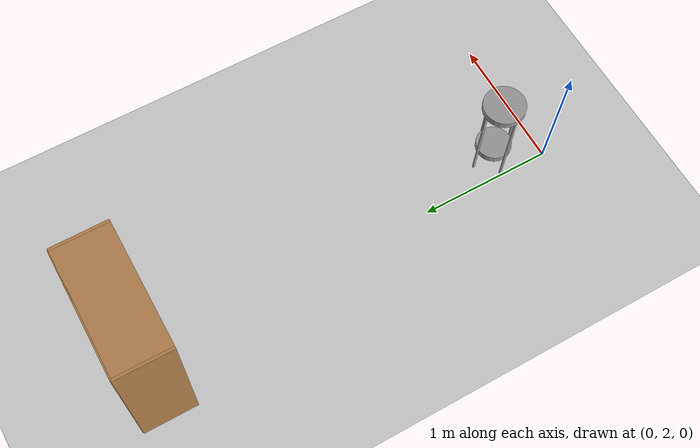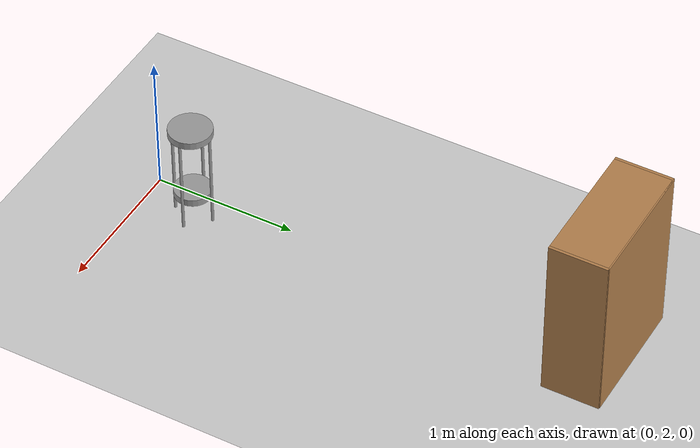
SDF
<sdf version="1.6">
 <world name="default">
  <model name="ground_plane">
   <static>1</static>
   <link name="link">
    <collision name="collision">
     <geometry><plane><normal>0 0 1</normal><size>100 100</size></plane></geometry>
     <surface><friction><ode><mu>100</mu><mu2>50</mu2></ode></friction></surface>
    </collision>
    <visual name="visual">
     <cast_shadows>0</cast_shadows>
     <geometry><plane><normal>0 0 1</normal><size>100 100</size></plane></geometry>
     <material>
      <script><uri>file://media/materials/scripts/gazebo.material</uri><name>Gazebo/Grey</name></script>
     </material>
    </visual>
   </link>
  </model>
  <model name="bookshelf">
   <static>1</static>
   <link name="link">
    <inertial><mass>1</mass></inertial>
    <collision name="back">
     <pose>0 0.005 0.6 0 -0 0</pose>
     <geometry><box><size>0.9 0.01 1.2</size></box></geometry>
    </collision>
    <visual name="visual1">
     <pose>0 0.005 0.6 0 -0 0</pose>
     <geometry><box><size>0.9 0.01 1.2</size></box></geometry>
     <material>
      <script><uri>file://media/materials/scripts/gazebo.material</uri><name>Gazebo/Wood</name></script>
     </material>
    </visual>
    <collision name="left_side">
     <pose>0.45 -0.195 0.6 0 -0 0</pose>
     <geometry><box><size>0.02 0.4 1.2</size></box></geometry>
    </collision>
    <visual name="visual2">
     <pose>0.45 -0.195 0.6 0 -0 0</pose>
     <geometry><box><size>0.02 0.4 1.2</size></box></geometry>
     <material>
      <script><uri>file://media/materials/scripts/gazebo.material</uri><name>Gazebo/Wood</name></script>
     </material>
    </visual>
    <collision name="right_side">
     <pose>-0.45 -0.195 0.6 0 -0 0</pose>
     <geometry><box><size>0.02 0.4 1.2</size></box></geometry>
    </collision>
    <visual name="visual3">
     <pose>-0.45 -0.195 0.6 0 -0 0</pose>
     <geometry><box><size>0.02 0.4 1.2</size></box></geometry>
     <material>
      <script><uri>file://media/materials/scripts/gazebo.material</uri><name>Gazebo/Wood</name></script>
     </material>
    </visual>
    <collision name="bottom">
     <pose>0 -0.195 0.03 0 -0 0</pose>
     <geometry><box><size>0.88 0.4 0.06</size></box></geometry>
    </collision>
    <visual name="visual4">
     <pose>0 -0.195 0.03 0 -0 0</pose>
     <geometry><box><size>0.88 0.4 0.06</size></box></geometry>
     <material>
      <script><uri>file://media/materials/scripts/gazebo.material</uri><name>Gazebo/Wood</name></script>
     </material>
    </visual>
    <collision name="top">
     <pose>0 -0.195 1.19 0 -0 0</pose>
     <geometry><box><size>0.88 0.4 0.02</size></box></geometry>
    </collision>
    <visual name="visual5">
     <pose>0 -0.195 1.19 0 -0 0</pose>
     <geometry><box><size>0.88 0.4 0.02</size></box></geometry>
     <material>
      <script><uri>file://media/materials/scripts/gazebo.material</uri><name>Gazebo/Wood</name></script>
     </material>
    </visual>
    <collision name="low_shelf">
     <pose>0 -0.195 0.43 0 -0 0</pose>
     <geometry><box><size>0.88 0.4 0.02</size></box></geometry>
    </collision>
    <visual name="visual6">
     <pose>0 -0.195 0.43 0 -0 0</pose>
     <geometry><box><size>0.88 0.4 0.02</size></box></geometry>
     <material>
      <script><uri>file://media/materials/scripts/gazebo.material</uri><name>Gazebo/Wood</name></script>
     </material>
    </visual>
    <collision name="high_shelf">
     <pose>0 -0.195 0.8 0 -0 0</pose>
     <geometry><box><size>0.88 0.4 0.02</size></box></geometry>
    </collision>
    <visual name="visual7">
     <pose>0 -0.195 0.8 0 -0 0</pose>
     <geometry><box><size>0.88 0.4 0.02</size></box></geometry>
     <material>
      <script><uri>file://media/materials/scripts/gazebo.material</uri><name>Gazebo/Wood</name></script>
     </material>
    </visual>
   </link>
   <pose>-0.009691 5.45445 0 0 -0 0</pose>
  </model>
  <model name="Stool_0_clone_1">
   <link name="link_3">
    <pose>0 -0 0.316667 0 -0 0</pose>
    <inertial>
     <mass>0.2</mass>
     <inertia><ixx>0.145833</ixx><ixy>0</ixy><ixz>0</ixz><iyy>0.145833</iyy><iyz>0</iyz><izz>0.125</izz></inertia>
    </inertial>
    <visual name="visual">
     <geometry><cylinder><radius>0.15</radius><length>0.05</length></cylinder></geometry>
     <material>
      <lighting>1</lighting>
      <script><uri>file://media/materials/scripts/gazebo.material</uri><name>Gazebo/Grey</name></script>
      <shader type="pixel"><normal_map>__default__</normal_map></shader>
      <ambient>0.3 0.3 0.3 1</ambient>
      <diffuse>0.7 0.7 0.7 1</diffuse>
      <specular>0.01 0.01 0.01 1</specular>
      <emissive>0 0 0 1</emissive>
     </material>
    </visual>
    <collision name="collision">
     <geometry><cylinder><radius>0.15</radius><length>0.05</length></cylinder></geometry>
     <surface>
      <friction>
       <ode><mu>1</mu><mu2>1</mu2><fdir1>0 0 0</fdir1><slip1>0</slip1><slip2>0</slip2></ode>
       <torsional>
        <coefficient>1</coefficient>
        <patch_radius>0</patch_radius>
        <surface_radius>0</surface_radius>
        <use_patch_radius>1</use_patch_radius>
        <ode><slip>0</slip></ode>
       </torsional>
      </friction>
      <bounce><restitution_coefficient>0</restitution_coefficient><threshold>1e+06</threshold></bounce>
      <contact>
       <collide_without_contact>0</collide_without_contact>
       <collide_without_contact_bitmask>1</collide_without_contact_bitmask>
       <collide_bitmask>1</collide_bitmask>
       <ode>
        <soft_cfm>0</soft_cfm>
        <soft_erp>0.2</soft_erp>
        <kp>1e+13</kp>
        <kd>1</kd>
        <max_vel>0.01</max_vel>
        <min_depth>0</min_depth>
       </ode>
       <bullet>
        <split_impulse>1</split_impulse>
        <split_impulse_penetration_threshold>-0.01</split_impulse_penetration_threshold>
        <soft_cfm>0</soft_cfm>
        <soft_erp>0.2</soft_erp>
        <kp>1e+13</kp>
        <kd>1</kd>
       </bullet>
      </contact>
     </surface>
    </collision>
   </link>
   <link name="link_4">
    <pose>-0 0 -0.2 0 -0 0</pose>
    <inertial>
     <mass>1</mass>
     <inertia><ixx>0.145833</ixx><ixy>0</ixy><ixz>0</ixz><iyy>0.145833</iyy><iyz>0</iyz><izz>0.125</izz></inertia>
    </inertial>
    <visual name="visual">
     <geometry><cylinder><radius>0.13</radius><length>0.05</length></cylinder></geometry>
     <material>
      <lighting>1</lighting>
      <script><uri>file://media/materials/scripts/gazebo.material</uri><name>Gazebo/Grey</name></script>
      <shader type="pixel"><normal_map>__default__</normal_map></shader>
      <ambient>0.3 0.3 0.3 1</ambient>
      <diffuse>0.7 0.7 0.7 1</diffuse>
      <specular>0.01 0.01 0.01 1</specular>
      <emissive>0 0 0 1</emissive>
     </material>
    </visual>
    <collision name="collision">
     <geometry><cylinder><radius>0.13</radius><length>0.05</length></cylinder></geometry>
     <surface>
      <friction>
       <ode><mu>1</mu><mu2>1</mu2><fdir1>0 0 0</fdir1><slip1>0</slip1><slip2>0</slip2></ode>
       <torsional>
        <coefficient>1</coefficient>
        <patch_radius>0</patch_radius>
        <surface_radius>0</surface_radius>
        <use_patch_radius>1</use_patch_radius>
        <ode><slip>0</slip></ode>
       </torsional>
      </friction>
      <bounce><restitution_coefficient>0</restitution_coefficient><threshold>1e+06</threshold></bounce>
      <contact>
       <collide_without_contact>0</collide_without_contact>
       <collide_without_contact_bitmask>1</collide_without_contact_bitmask>
       <collide_bitmask>1</collide_bitmask>
       <ode>
        <soft_cfm>0</soft_cfm>
        <soft_erp>0.2</soft_erp>
        <kp>1e+13</kp>
        <kd>1</kd>
        <max_vel>0.01</max_vel>
        <min_depth>0</min_depth>
       </ode>
       <bullet>
        <split_impulse>1</split_impulse>
        <split_impulse_penetration_threshold>-0.01</split_impulse_penetration_threshold>
        <soft_cfm>0</soft_cfm>
        <soft_erp>0.2</soft_erp>
        <kp>1e+13</kp>
        <kd>1</kd>
       </bullet>
      </contact>
     </surface>
    </collision>
   </link>
   <link name="link_5">
    <pose>0.14 0 -0.058333 0 -0 0</pose>
    <inertial>
     <mass>1</mass>
     <inertia><ixx>0.145833</ixx><ixy>0</ixy><ixz>0</ixz><iyy>0.145833</iyy><iyz>0</iyz><izz>0.125</izz></inertia>
    </inertial>
    <visual name="visual">
     <geometry><cylinder><radius>0.01</radius><length>0.7</length></cylinder></geometry>
     <material>
      <lighting>1</lighting>
      <script><uri>file://media/materials/scripts/gazebo.material</uri><name>Gazebo/Grey</name></script>
      <shader type="pixel"><normal_map>__default__</normal_map></shader>
      <ambient>0.3 0.3 0.3 1</ambient>
      <diffuse>0.7 0.7 0.7 1</diffuse>
      <specular>0.01 0.01 0.01 1</specular>
      <emissive>0 0 0 1</emissive>
     </material>
    </visual>
    <collision name="collision">
     <geometry><cylinder><radius>0.01</radius><length>0.7</length></cylinder></geometry>
     <surface>
      <friction>
       <ode><mu>1</mu><mu2>1</mu2><fdir1>0 0 0</fdir1><slip1>0</slip1><slip2>0</slip2></ode>
       <torsional>
        <coefficient>1</coefficient>
        <patch_radius>0</patch_radius>
        <surface_radius>0</surface_radius>
        <use_patch_radius>1</use_patch_radius>
        <ode><slip>0</slip></ode>
       </torsional>
      </friction>
      <bounce><restitution_coefficient>0</restitution_coefficient><threshold>1e+06</threshold></bounce>
      <contact>
       <collide_without_contact>0</collide_without_contact>
       <collide_without_contact_bitmask>1</collide_without_contact_bitmask>
       <collide_bitmask>1</collide_bitmask>
       <ode>
        <soft_cfm>0</soft_cfm>
        <soft_erp>0.2</soft_erp>
        <kp>1e+13</kp>
        <kd>1</kd>
        <max_vel>0.01</max_vel>
        <min_depth>0</min_depth>
       </ode>
       <bullet>
        <split_impulse>1</split_impulse>
        <split_impulse_penetration_threshold>-0.01</split_impulse_penetration_threshold>
        <soft_cfm>0</soft_cfm>
        <soft_erp>0.2</soft_erp>
        <kp>1e+13</kp>
        <kd>1</kd>
       </bullet>
      </contact>
     </surface>
    </collision>
   </link>
   <link name="link_5_clone">
    <pose>-0.14 0 -0.058333 0 -0 0</pose>
    <inertial>
     <mass>1</mass>
     <inertia><ixx>0.145833</ixx><ixy>0</ixy><ixz>0</ixz><iyy>0.145833</iyy><iyz>0</iyz><izz>0.125</izz></inertia>
    </inertial>
    <visual name="visual">
     <geometry><cylinder><radius>0.01</radius><length>0.7</length></cylinder></geometry>
     <material>
      <lighting>1</lighting>
      <script><uri>file://media/materials/scripts/gazebo.material</uri><name>Gazebo/Grey</name></script>
      <shader type="pixel"><normal_map>__default__</normal_map></shader>
      <ambient>0.3 0.3 0.3 1</ambient>
      <diffuse>0.7 0.7 0.7 1</diffuse>
      <specular>0.01 0.01 0.01 1</specular>
      <emissive>0 0 0 1</emissive>
     </material>
    </visual>
    <collision name="collision">
     <geometry><cylinder><radius>0.01</radius><length>0.7</length></cylinder></geometry>
     <surface>
      <friction>
       <ode><mu>1</mu><mu2>1</mu2><fdir1>0 0 0</fdir1><slip1>0</slip1><slip2>0</slip2></ode>
       <torsional>
        <coefficient>1</coefficient>
        <patch_radius>0</patch_radius>
        <surface_radius>0</surface_radius>
        <use_patch_radius>1</use_patch_radius>
        <ode><slip>0</slip></ode>
       </torsional>
      </friction>
      <bounce><restitution_coefficient>0</restitution_coefficient><threshold>1e+06</threshold></bounce>
      <contact>
       <collide_without_contact>0</collide_without_contact>
       <collide_without_contact_bitmask>1</collide_without_contact_bitmask>
       <collide_bitmask>1</collide_bitmask>
       <ode>
        <soft_cfm>0</soft_cfm>
        <soft_erp>0.2</soft_erp>
        <kp>1e+13</kp>
        <kd>1</kd>
        <max_vel>0.01</max_vel>
        <min_depth>0</min_depth>
       </ode>
       <bullet>
        <split_impulse>1</split_impulse>
        <split_impulse_penetration_threshold>-0.01</split_impulse_penetration_threshold>
        <soft_cfm>0</soft_cfm>
        <soft_erp>0.2</soft_erp>
        <kp>1e+13</kp>
        <kd>1</kd>
       </bullet>
      </contact>
     </surface>
    </collision>
   </link>
   <link name="link_5_clone_0">
    <pose>-0 0.14 -0.058333 0 -0 0</pose>
    <inertial>
     <mass>1</mass>
     <inertia><ixx>0.145833</ixx><ixy>0</ixy><ixz>0</ixz><iyy>0.145833</iyy><iyz>0</iyz><izz>0.125</izz></inertia>
    </inertial>
    <visual name="visual">
     <geometry><cylinder><radius>0.01</radius><length>0.7</length></cylinder></geometry>
     <material>
      <lighting>1</lighting>
      <script><uri>file://media/materials/scripts/gazebo.material</uri><name>Gazebo/Grey</name></script>
      <shader type="pixel"><normal_map>__default__</normal_map></shader>
      <ambient>0.3 0.3 0.3 1</ambient>
      <diffuse>0.7 0.7 0.7 1</diffuse>
      <specular>0.01 0.01 0.01 1</specular>
      <emissive>0 0 0 1</emissive>
     </material>
    </visual>
    <collision name="collision">
     <geometry><cylinder><radius>0.01</radius><length>0.7</length></cylinder></geometry>
     <surface>
      <friction>
       <ode><mu>1</mu><mu2>1</mu2><fdir1>0 0 0</fdir1><slip1>0</slip1><slip2>0</slip2></ode>
       <torsional>
        <coefficient>1</coefficient>
        <patch_radius>0</patch_radius>
        <surface_radius>0</surface_radius>
        <use_patch_radius>1</use_patch_radius>
        <ode><slip>0</slip></ode>
       </torsional>
      </friction>
      <bounce><restitution_coefficient>0</restitution_coefficient><threshold>1e+06</threshold></bounce>
      <contact>
       <collide_without_contact>0</collide_without_contact>
       <collide_without_contact_bitmask>1</collide_without_contact_bitmask>
       <collide_bitmask>1</collide_bitmask>
       <ode>
        <soft_cfm>0</soft_cfm>
        <soft_erp>0.2</soft_erp>
        <kp>1e+13</kp>
        <kd>1</kd>
        <max_vel>0.01</max_vel>
        <min_depth>0</min_depth>
       </ode>
       <bullet>
        <split_impulse>1</split_impulse>
        <split_impulse_penetration_threshold>-0.01</split_impulse_penetration_threshold>
        <soft_cfm>0</soft_cfm>
        <soft_erp>0.2</soft_erp>
        <kp>1e+13</kp>
        <kd>1</kd>
       </bullet>
      </contact>
     </surface>
    </collision>
   </link>
   <link name="link_5_clone_1">
    <pose>0 -0.14 -0.058333 0 -0 0</pose>
    <inertial>
     <mass>1</mass>
     <inertia><ixx>0.145833</ixx><ixy>0</ixy><ixz>0</ixz><iyy>0.145833</iyy><iyz>0</iyz><izz>0.125</izz></inertia>
    </inertial>
    <visual name="visual">
     <geometry><cylinder><radius>0.01</radius><length>0.7</length></cylinder></geometry>
     <material>
      <lighting>1</lighting>
      <script><uri>file://media/materials/scripts/gazebo.material</uri><name>Gazebo/Grey</name></script>
      <shader type="pixel"><normal_map>__default__</normal_map></shader>
      <ambient>0.3 0.3 0.3 1</ambient>
      <diffuse>0.7 0.7 0.7 1</diffuse>
      <specular>0.01 0.01 0.01 1</specular>
      <emissive>0 0 0 1</emissive>
     </material>
    </visual>
    <collision name="collision">
     <geometry><cylinder><radius>0.01</radius><length>0.7</length></cylinder></geometry>
     <surface>
      <friction>
       <ode><mu>1</mu><mu2>1</mu2><fdir1>0 0 0</fdir1><slip1>0</slip1><slip2>0</slip2></ode>
       <torsional>
        <coefficient>1</coefficient>
        <patch_radius>0</patch_radius>
        <surface_radius>0</surface_radius>
        <use_patch_radius>1</use_patch_radius>
        <ode><slip>0</slip></ode>
       </torsional>
      </friction>
      <bounce><restitution_coefficient>0</restitution_coefficient><threshold>1e+06</threshold></bounce>
      <contact>
       <collide_without_contact>0</collide_without_contact>
       <collide_without_contact_bitmask>1</collide_without_contact_bitmask>
       <collide_bitmask>1</collide_bitmask>
       <ode>
        <soft_cfm>0</soft_cfm>
        <soft_erp>0.2</soft_erp>
        <kp>1e+13</kp>
        <kd>1</kd>
        <max_vel>0.01</max_vel>
        <min_depth>0</min_depth>
       </ode>
       <bullet>
        <split_impulse>1</split_impulse>
        <split_impulse_penetration_threshold>-0.01</split_impulse_penetration_threshold>
        <soft_cfm>0</soft_cfm>
        <soft_erp>0.2</soft_erp>
        <kp>1e+13</kp>
        <kd>1</kd>
       </bullet>
      </contact>
     </surface>
    </collision>
   </link>
   <joint name="link_4_JOINT_0" type="fixed">
    <parent>link_4</parent>
    <child>link_5_clone_1</child>
    <physics>
     <ode><limit><cfm>0</cfm><erp>0.2</erp></limit><suspension><cfm>0</cfm><erp>0.2</erp></suspension></ode>
    </physics>
   </joint>
   <joint name="link_4_JOINT_1" type="fixed">
    <parent>link_4</parent>
    <child>link_5_clone</child>
    <physics>
     <ode><limit><cfm>0</cfm><erp>0.2</erp></limit><suspension><cfm>0</cfm><erp>0.2</erp></suspension></ode>
    </physics>
   </joint>
   <joint name="link_4_JOINT_2" type="fixed">
    <parent>link_4</parent>
    <child>link_5_clone_0</child>
    <physics>
     <ode><limit><cfm>0</cfm><erp>0.2</erp></limit><suspension><cfm>0</cfm><erp>0.2</erp></suspension></ode>
    </physics>
   </joint>
   <joint name="link_4_JOINT_3" type="fixed">
    <parent>link_4</parent>
    <child>link_5</child>
    <physics>
     <ode><limit><cfm>0</cfm><erp>0.2</erp></limit><suspension><cfm>0</cfm><erp>0.2</erp></suspension></ode>
    </physics>
   </joint>
   <joint name="link_4_JOINT_4" type="fixed">
    <parent>link_4</parent>
    <child>link_3</child>
    <physics>
     <ode><limit><cfm>0</cfm><erp>0.2</erp></limit><suspension><cfm>0</cfm><erp>0.2</erp></suspension></ode>
    </physics>
   </joint>
   <static>0</static>
   <pose>0.164183 2.36313 0.408333 -1e-06 -2e-06 0.029687</pose>
  </model>
 </world>
</sdf>
